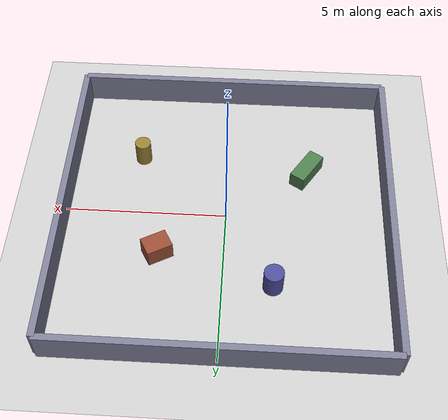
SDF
<?xml version="1.0"?>
<sdf version="1.8">
  <world name="rover_world">
    <physics name="1ms" type="ignored">
      <max_step_size>0.001</max_step_size>
      <real_time_factor>1.0</real_time_factor>
    </physics>
    <plugin filename="gz-sim-physics-system" name="gz::sim::systems::Physics"/>
    <plugin filename="gz-sim-user-commands-system" name="gz::sim::systems::UserCommands"/>
    <plugin filename="gz-sim-scene-broadcaster-system" name="gz::sim::systems::SceneBroadcaster"/>
    <plugin filename="gz-sim-sensors-system" name="gz::sim::systems::Sensors">
      <render_engine>ogre2</render_engine>
    </plugin>

    <light type="directional" name="sun">
      <cast_shadows>true</cast_shadows>
      <pose>0 0 10 0 0 0</pose>
      <diffuse>0.8 0.8 0.8 1</diffuse>
      <specular>0.2 0.2 0.2 1</specular>
      <direction>-0.5 0.1 -0.9</direction>
    </light>

    <model name="ground_plane">
      <static>true</static>
      <link name="link">
        <collision name="collision">
          <geometry><plane><normal>0 0 1</normal><size>100 100</size></plane></geometry>
        </collision>
        <visual name="visual">
          <geometry><plane><normal>0 0 1</normal><size>100 100</size></plane></geometry>
          <material><ambient>0.8 0.8 0.8 1</ambient><diffuse>0.8 0.8 0.8 1</diffuse></material>
        </visual>
      </link>
    </model>

    <!-- 10x10 m room -->
    <model name="wall_north">
      <static>true</static>
      <pose>0 5 0.5 0 0 0</pose>
      <link name="link">
        <collision name="collision"><geometry><box><size>10 0.2 1.0</size></box></geometry></collision>
        <visual name="visual">
          <geometry><box><size>10 0.2 1.0</size></box></geometry>
          <material><ambient>0.5 0.5 0.6 1</ambient><diffuse>0.5 0.5 0.6 1</diffuse></material>
        </visual>
      </link>
    </model>
    <model name="wall_south">
      <static>true</static>
      <pose>0 -5 0.5 0 0 0</pose>
      <link name="link">
        <collision name="collision"><geometry><box><size>10 0.2 1.0</size></box></geometry></collision>
        <visual name="visual">
          <geometry><box><size>10 0.2 1.0</size></box></geometry>
          <material><ambient>0.5 0.5 0.6 1</ambient><diffuse>0.5 0.5 0.6 1</diffuse></material>
        </visual>
      </link>
    </model>
    <model name="wall_east">
      <static>true</static>
      <pose>5 0 0.5 0 0 1.5708</pose>
      <link name="link">
        <collision name="collision"><geometry><box><size>10 0.2 1.0</size></box></geometry></collision>
        <visual name="visual">
          <geometry><box><size>10 0.2 1.0</size></box></geometry>
          <material><ambient>0.5 0.5 0.6 1</ambient><diffuse>0.5 0.5 0.6 1</diffuse></material>
        </visual>
      </link>
    </model>
    <model name="wall_west">
      <static>true</static>
      <pose>-5 0 0.5 0 0 1.5708</pose>
      <link name="link">
        <collision name="collision"><geometry><box><size>10 0.2 1.0</size></box></geometry></collision>
        <visual name="visual">
          <geometry><box><size>10 0.2 1.0</size></box></geometry>
          <material><ambient>0.5 0.5 0.6 1</ambient><diffuse>0.5 0.5 0.6 1</diffuse></material>
        </visual>
      </link>
    </model>

    <!-- Obstacles for SLAM features -->
    <model name="box_1">
      <static>true</static>
      <pose>2.0 1.5 0.3 0 0 0.5</pose>
      <link name="link">
        <collision name="collision"><geometry><box><size>0.8 0.6 0.6</size></box></geometry></collision>
        <visual name="visual">
          <geometry><box><size>0.8 0.6 0.6</size></box></geometry>
          <material><ambient>0.6 0.3 0.2 1</ambient><diffuse>0.6 0.3 0.2 1</diffuse></material>
        </visual>
      </link>
    </model>
    <model name="box_2">
      <static>true</static>
      <pose>-2.5 -1.8 0.25 0 0 1.0</pose>
      <link name="link">
        <collision name="collision"><geometry><box><size>1.2 0.5 0.5</size></box></geometry></collision>
        <visual name="visual">
          <geometry><box><size>1.2 0.5 0.5</size></box></geometry>
          <material><ambient>0.3 0.5 0.3 1</ambient><diffuse>0.3 0.5 0.3 1</diffuse></material>
        </visual>
      </link>
    </model>
    <model name="cylinder_1">
      <static>true</static>
      <pose>-1.5 2.5 0.4 0 0 0</pose>
      <link name="link">
        <collision name="collision"><geometry><cylinder><radius>0.3</radius><length>0.8</length></cylinder></geometry></collision>
        <visual name="visual">
          <geometry><cylinder><radius>0.3</radius><length>0.8</length></cylinder></geometry>
          <material><ambient>0.3 0.3 0.6 1</ambient><diffuse>0.3 0.3 0.6 1</diffuse></material>
        </visual>
      </link>
    </model>
    <model name="cylinder_2">
      <static>true</static>
      <pose>2.8 -2.2 0.4 0 0 0</pose>
      <link name="link">
        <collision name="collision"><geometry><cylinder><radius>0.25</radius><length>0.8</length></cylinder></geometry></collision>
        <visual name="visual">
          <geometry><cylinder><radius>0.25</radius><length>0.8</length></cylinder></geometry>
          <material><ambient>0.6 0.5 0.2 1</ambient><diffuse>0.6 0.5 0.2 1</diffuse></material>
        </visual>
      </link>
    </model>
  </world>
</sdf>
